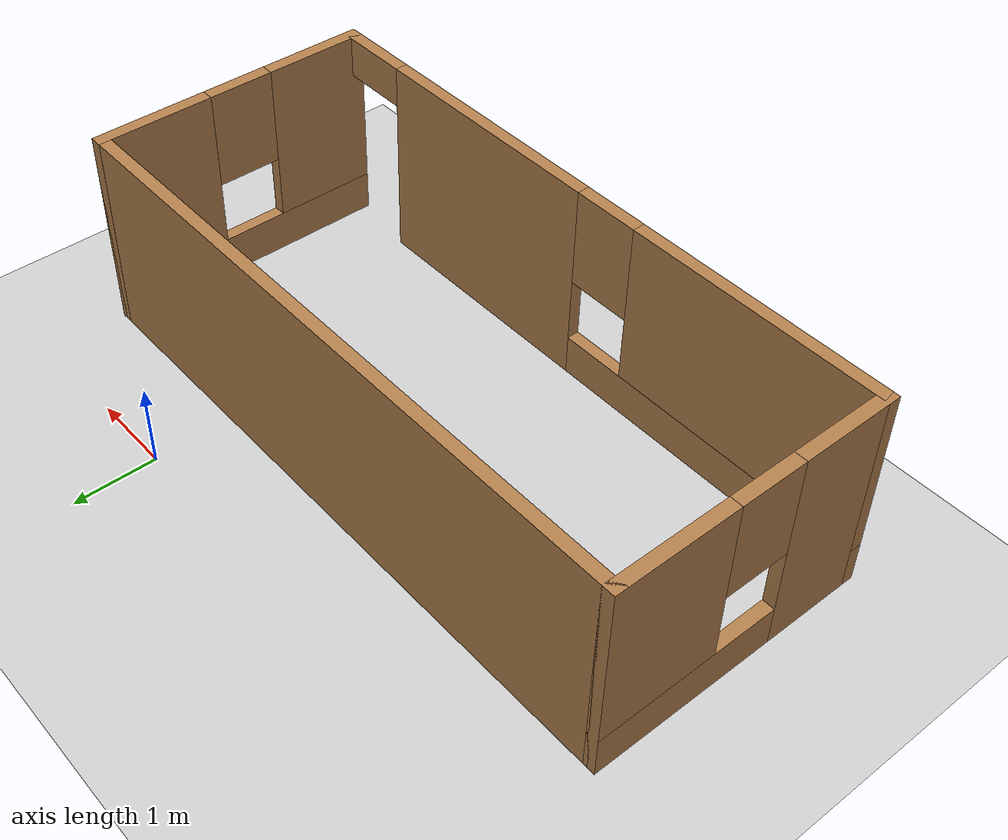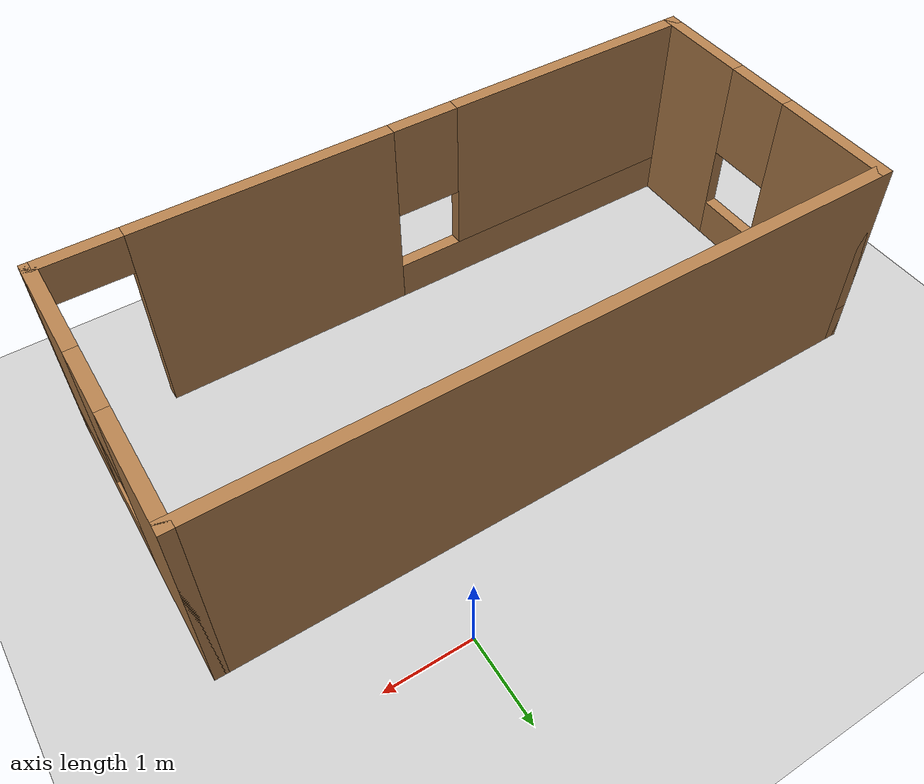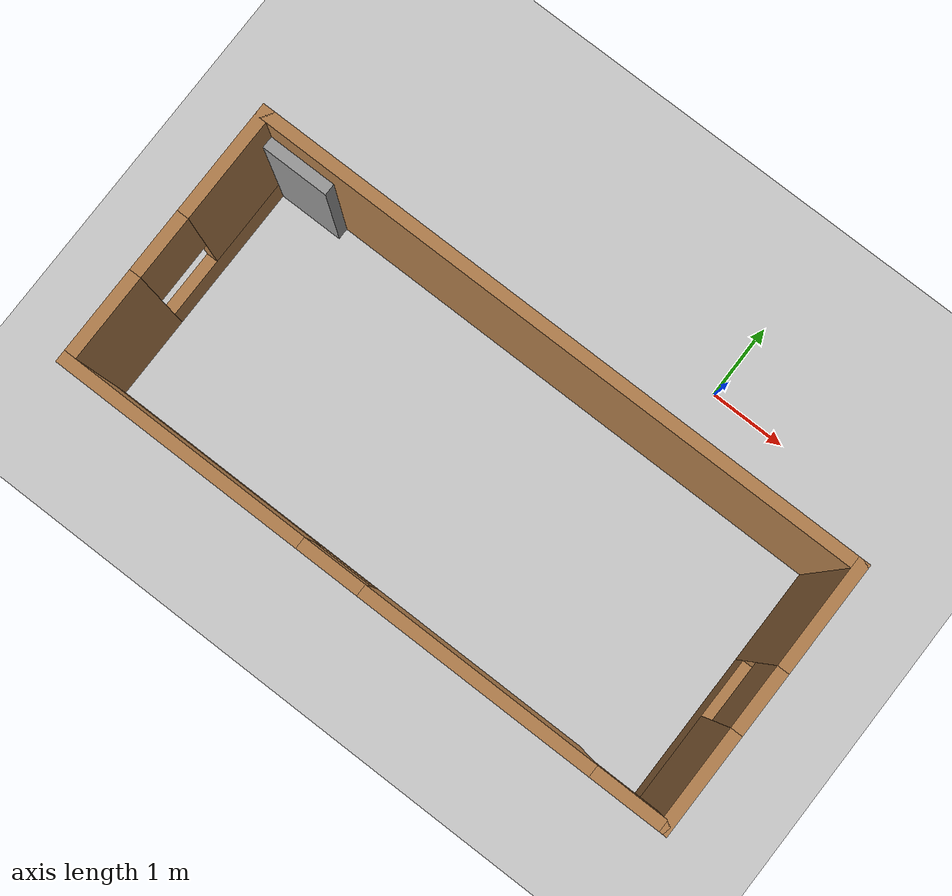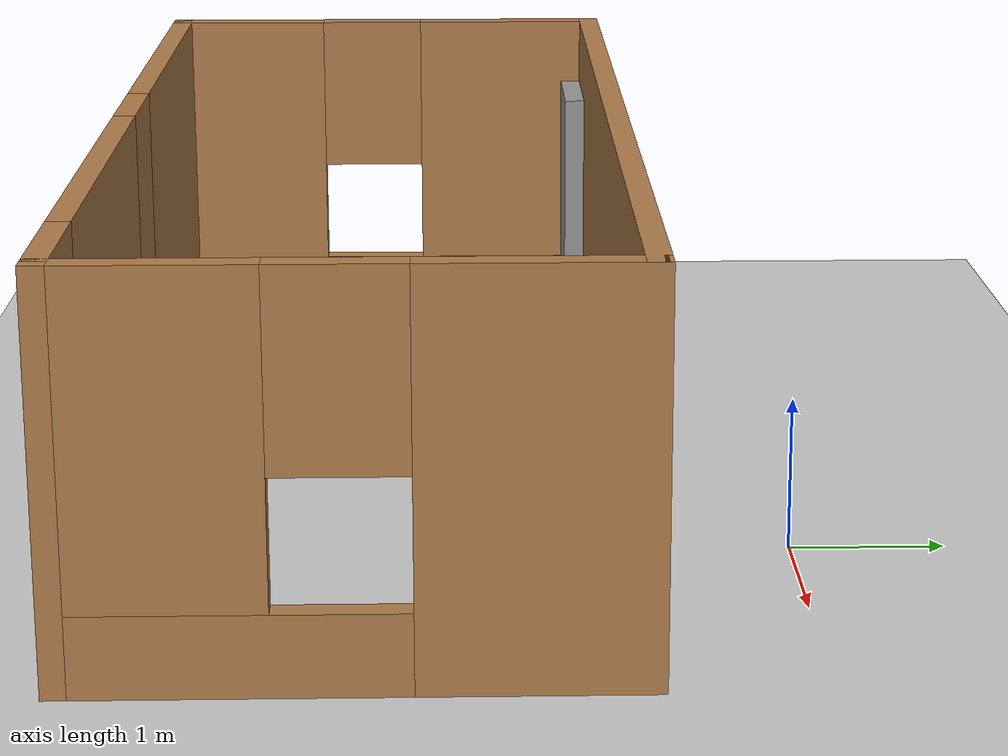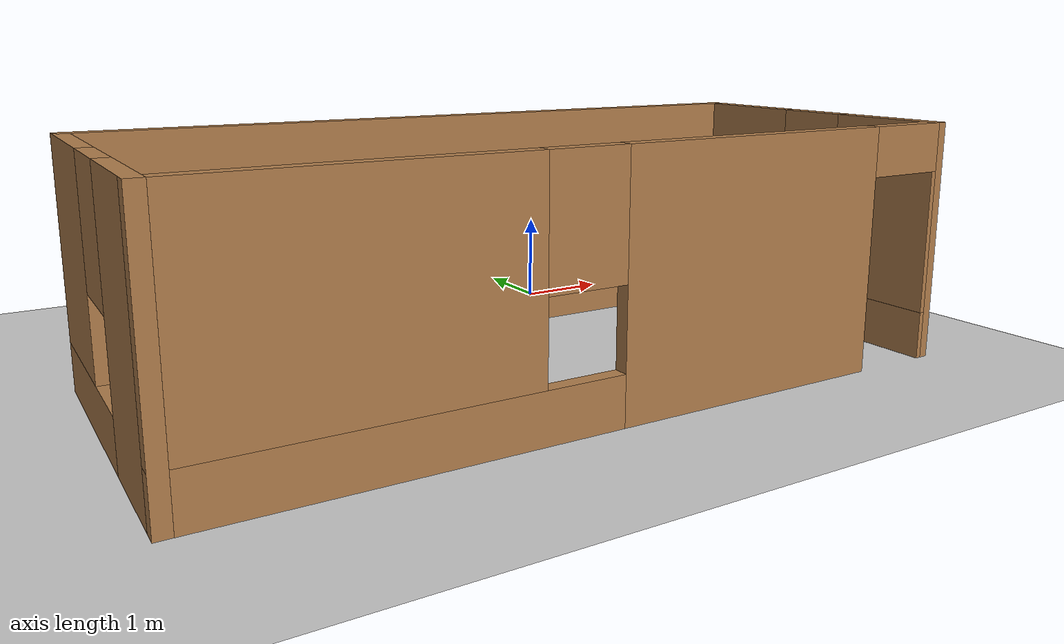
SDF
<sdf version="1.7">
 <world name="default">
  <light name="sun" type="directional">
   <pose>0 0 10 0 -0 0</pose>
   <diffuse>0.8 0.8 0.8 1</diffuse>
   <specular>0.2 0.2 0.2 1</specular>
   <attenuation>
    <range>1000</range>
    <constant>0.9</constant>
    <linear>0.01</linear>
    <quadratic>0.001</quadratic>
   </attenuation>
   <direction>-0.5 0.1 -0.9</direction>
   <spot><inner_angle>0</inner_angle><outer_angle>0</outer_angle><falloff>0</falloff></spot>
  </light>
  <model name="ground_plane">
   <static>1</static>
   <link name="link">
    <collision name="collision">
     <geometry><plane><normal>0 0 1</normal><size>100 100</size></plane></geometry>
     <surface><friction><ode><mu>100</mu><mu2>50</mu2></ode></friction></surface>
    </collision>
    <visual name="visual">
     <cast_shadows>0</cast_shadows>
     <geometry><plane><normal>0 0 1</normal><size>100 100</size></plane></geometry>
     <material>
      <script><uri>file://media/materials/scripts/gazebo.material</uri><name>Gazebo/Grey</name></script>
     </material>
    </visual>
   </link>
  </model>
  <gravity>0 0 -9.8</gravity>
  <magnetic_field>6e-06 2.3e-05 -4.2e-05</magnetic_field>
  <atmosphere type="adiabatic"/>
  <physics type="ode">
   <max_step_size>0.001</max_step_size>
   <real_time_factor>1</real_time_factor>
   <real_time_update_rate>1000</real_time_update_rate>
  </physics>
  <scene><ambient>0.4 0.4 0.4 1</ambient><background>0.7 0.7 0.7 1</background><shadows>1</shadows></scene>
  <audio><device>default</device></audio>
  <spherical_coordinates>
   <surface_model>EARTH_WGS84</surface_model>
   <latitude_deg>0</latitude_deg>
   <longitude_deg>0</longitude_deg>
   <elevation>0</elevation>
   <heading_deg>0</heading_deg>
  </spherical_coordinates>
  <model name="test">
   <pose>-1.755 -2.2275 0 0 -0 0</pose>
   <link name="Door_0">
    <collision name="Door_0_Collision">
     <geometry><box><size>0.9 0.17 2</size></box></geometry>
     <pose>0 0 1 0 -0 0</pose>
    </collision>
    <visual name="Door_0_Visual">
     <pose>0 0 1 0 -0 0</pose>
     <geometry><box><size>0.9 0.17 2</size></box></geometry>
     <material>
      <script><uri>file://media/materials/scripts/gazebo.material</uri><name>Gazebo/Grey</name></script>
     </material>
    </visual>
    <pose>-3.435 1.0575 0 0 -0 0</pose>
   </link>
   <link name="Wall_1">
    <pose>-3.925 -0.4775 0 0 -0 1.5708</pose>
    <visual name="Wall_1_Visual_0">
     <pose>-1.1325 0 1.25 0 -0 0</pose>
     <geometry><box><size>1.235 0.15 2.5</size></box></geometry>
     <material>
      <script><uri>file://media/materials/scripts/gazebo.material</uri><name>Gazebo/Wood</name></script>
      <ambient>1 1 1 1</ambient>
     </material>
     <meta><layer>0</layer></meta>
    </visual>
    <collision name="Wall_1_Collision_0">
     <geometry><box><size>1.235 0.15 2.5</size></box></geometry>
     <pose>-1.1325 0 1.25 0 -0 0</pose>
    </collision>
    <visual name="Wall_1_Visual_1">
     <pose>0.6175 0 0.25 0 -0 0</pose>
     <geometry><box><size>2.265 0.15 0.5</size></box></geometry>
     <material>
      <script><uri>file://media/materials/scripts/gazebo.material</uri><name>Gazebo/Wood</name></script>
      <ambient>1 1 1 1</ambient>
     </material>
     <meta><layer>0</layer></meta>
    </visual>
    <collision name="Wall_1_Collision_1">
     <geometry><box><size>2.265 0.15 0.5</size></box></geometry>
     <pose>0.6175 0 0.25 0 -0 0</pose>
    </collision>
    <visual name="Wall_1_Visual_2">
     <pose>1.0175 0 1.5 0 -0 0</pose>
     <geometry><box><size>1.465 0.15 2</size></box></geometry>
     <material>
      <script><uri>file://media/materials/scripts/gazebo.material</uri><name>Gazebo/Wood</name></script>
      <ambient>1 1 1 1</ambient>
     </material>
     <meta><layer>0</layer></meta>
    </visual>
    <collision name="Wall_1_Collision_2">
     <geometry><box><size>1.465 0.15 2</size></box></geometry>
     <pose>1.0175 0 1.5 0 -0 0</pose>
    </collision>
    <visual name="Wall_1_Visual_3">
     <pose>-0.115 0 1.9 0 -0 0</pose>
     <geometry><box><size>0.8 0.15 1.2</size></box></geometry>
     <material>
      <script><uri>file://media/materials/scripts/gazebo.material</uri><name>Gazebo/Wood</name></script>
      <ambient>1 1 1 1</ambient>
     </material>
     <meta><layer>0</layer></meta>
    </visual>
    <collision name="Wall_1_Collision_3">
     <geometry><box><size>0.8 0.15 1.2</size></box></geometry>
     <pose>-0.115 0 1.9 0 -0 0</pose>
    </collision>
   </link>
   <link name="Wall_2">
    <collision name="Wall_2_Collision">
     <geometry><box><size>8 0.15 2.5</size></box></geometry>
     <pose>0 0 1.25 0 -0 0</pose>
    </collision>
    <visual name="Wall_2_Visual">
     <pose>0 0 1.25 0 -0 0</pose>
     <geometry><box><size>8 0.15 2.5</size></box></geometry>
     <material>
      <script><uri>file://media/materials/scripts/gazebo.material</uri><name>Gazebo/Wood</name></script>
      <ambient>1 1 1 1</ambient>
     </material>
     <meta><layer>0</layer></meta>
    </visual>
    <pose>-0 1.1975 0 0 -0 0</pose>
   </link>
   <link name="Wall_3">
    <pose>3.925 -0.4775 0 0 -0 -1.5708</pose>
    <visual name="Wall_3_Visual_0">
     <pose>-1.0425 0 1.25 0 -0 0</pose>
     <geometry><box><size>1.415 0.15 2.5</size></box></geometry>
     <material>
      <script><uri>file://media/materials/scripts/gazebo.material</uri><name>Gazebo/Wood</name></script>
      <ambient>1 1 1 1</ambient>
     </material>
     <meta><layer>0</layer></meta>
    </visual>
    <collision name="Wall_3_Collision_0">
     <geometry><box><size>1.415 0.15 2.5</size></box></geometry>
     <pose>-1.0425 0 1.25 0 -0 0</pose>
    </collision>
    <visual name="Wall_3_Visual_1">
     <pose>0.7075 0 0.25 0 -0 0</pose>
     <geometry><box><size>2.085 0.15 0.5</size></box></geometry>
     <material>
      <script><uri>file://media/materials/scripts/gazebo.material</uri><name>Gazebo/Wood</name></script>
      <ambient>1 1 1 1</ambient>
     </material>
     <meta><layer>0</layer></meta>
    </visual>
    <collision name="Wall_3_Collision_1">
     <geometry><box><size>2.085 0.15 0.5</size></box></geometry>
     <pose>0.7075 0 0.25 0 -0 0</pose>
    </collision>
    <visual name="Wall_3_Visual_2">
     <pose>1.1075 0 1.5 0 -0 0</pose>
     <geometry><box><size>1.285 0.15 2</size></box></geometry>
     <material>
      <script><uri>file://media/materials/scripts/gazebo.material</uri><name>Gazebo/Wood</name></script>
      <ambient>1 1 1 1</ambient>
     </material>
     <meta><layer>0</layer></meta>
    </visual>
    <collision name="Wall_3_Collision_2">
     <geometry><box><size>1.285 0.15 2</size></box></geometry>
     <pose>1.1075 0 1.5 0 -0 0</pose>
    </collision>
    <visual name="Wall_3_Visual_3">
     <pose>0.065 0 1.9 0 -0 0</pose>
     <geometry><box><size>0.8 0.15 1.2</size></box></geometry>
     <material>
      <script><uri>file://media/materials/scripts/gazebo.material</uri><name>Gazebo/Wood</name></script>
      <ambient>1 1 1 1</ambient>
     </material>
     <meta><layer>0</layer></meta>
    </visual>
    <collision name="Wall_3_Collision_3">
     <geometry><box><size>0.8 0.15 1.2</size></box></geometry>
     <pose>0.065 0 1.9 0 -0 0</pose>
    </collision>
   </link>
   <link name="Wall_4">
    <pose>-0 -2.1525 0 0 -0 3.14159</pose>
    <visual name="Wall_4_Visual_0">
     <pose>-3.9525 0 1.25 0 -0 0</pose>
     <geometry><box><size>0.095 0.15 2.5</size></box></geometry>
     <material>
      <script><uri>file://media/materials/scripts/gazebo.material</uri><name>Gazebo/Wood</name></script>
      <ambient>1 1 1 1</ambient>
     </material>
     <meta><layer>0</layer></meta>
    </visual>
    <collision name="Wall_4_Collision_0">
     <geometry><box><size>0.095 0.15 2.5</size></box></geometry>
     <pose>-3.9525 0 1.25 0 -0 0</pose>
    </collision>
    <visual name="Wall_4_Visual_1">
     <pose>-1.5 0 1.25 0 -0 0</pose>
     <geometry><box><size>3.01 0.15 2.5</size></box></geometry>
     <material>
      <script><uri>file://media/materials/scripts/gazebo.material</uri><name>Gazebo/Wood</name></script>
      <ambient>1 1 1 1</ambient>
     </material>
     <meta><layer>0</layer></meta>
    </visual>
    <collision name="Wall_4_Collision_1">
     <geometry><box><size>3.01 0.15 2.5</size></box></geometry>
     <pose>-1.5 0 1.25 0 -0 0</pose>
    </collision>
    <visual name="Wall_4_Visual_2">
     <pose>2.0025 0 0.25 0 -0 0</pose>
     <geometry><box><size>3.995 0.15 0.5</size></box></geometry>
     <material>
      <script><uri>file://media/materials/scripts/gazebo.material</uri><name>Gazebo/Wood</name></script>
      <ambient>1 1 1 1</ambient>
     </material>
     <meta><layer>0</layer></meta>
    </visual>
    <collision name="Wall_4_Collision_2">
     <geometry><box><size>3.995 0.15 0.5</size></box></geometry>
     <pose>2.0025 0 0.25 0 -0 0</pose>
    </collision>
    <visual name="Wall_4_Visual_3">
     <pose>2.4025 0 1.5 0 -0 0</pose>
     <geometry><box><size>3.195 0.15 2</size></box></geometry>
     <material>
      <script><uri>file://media/materials/scripts/gazebo.material</uri><name>Gazebo/Wood</name></script>
      <ambient>1 1 1 1</ambient>
     </material>
     <meta><layer>0</layer></meta>
    </visual>
    <collision name="Wall_4_Collision_3">
     <geometry><box><size>3.195 0.15 2</size></box></geometry>
     <pose>2.4025 0 1.5 0 -0 0</pose>
    </collision>
    <visual name="Wall_4_Visual_4">
     <pose>0.405 0 1.9 0 -0 0</pose>
     <geometry><box><size>0.8 0.15 1.2</size></box></geometry>
     <material>
      <script><uri>file://media/materials/scripts/gazebo.material</uri><name>Gazebo/Wood</name></script>
      <ambient>1 1 1 1</ambient>
     </material>
     <meta><layer>0</layer></meta>
    </visual>
    <collision name="Wall_4_Collision_4">
     <geometry><box><size>0.8 0.15 1.2</size></box></geometry>
     <pose>0.405 0 1.9 0 -0 0</pose>
    </collision>
    <visual name="Wall_4_Visual_5">
     <pose>-3.455 0 2.25 0 -0 0</pose>
     <geometry><box><size>0.9 0.15 0.5</size></box></geometry>
     <material>
      <script><uri>file://media/materials/scripts/gazebo.material</uri><name>Gazebo/Wood</name></script>
      <ambient>1 1 1 1</ambient>
     </material>
     <meta><layer>0</layer></meta>
    </visual>
    <collision name="Wall_4_Collision_5">
     <geometry><box><size>0.9 0.15 0.5</size></box></geometry>
     <pose>-3.455 0 2.25 0 -0 0</pose>
    </collision>
   </link>
   <static>1</static>
  </model>
 </world>
</sdf>
